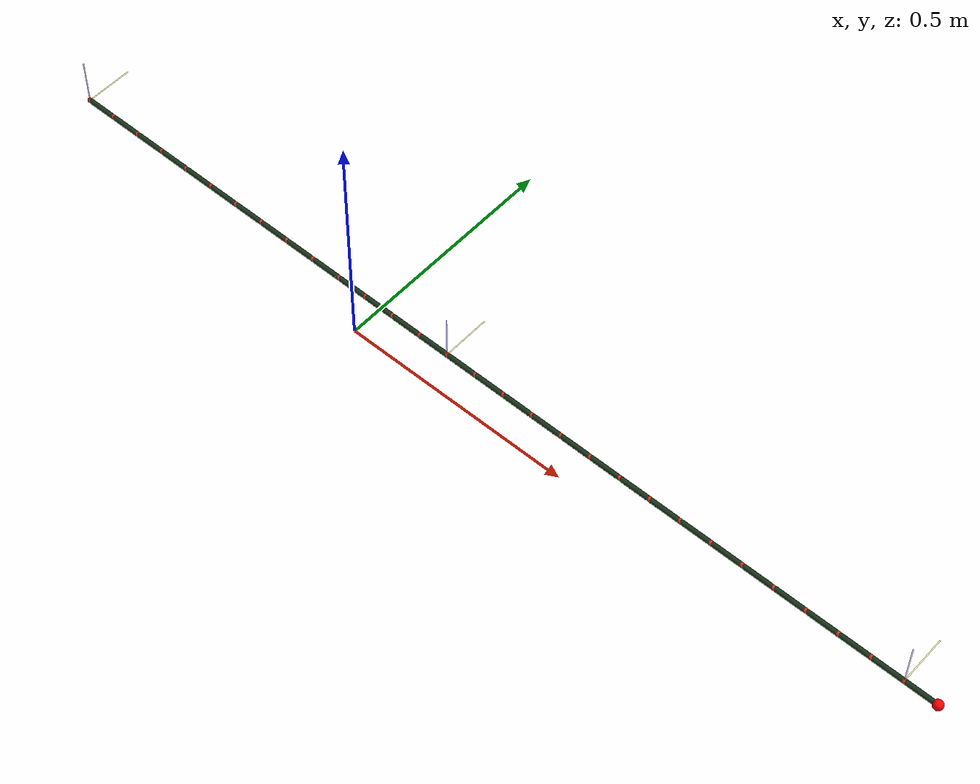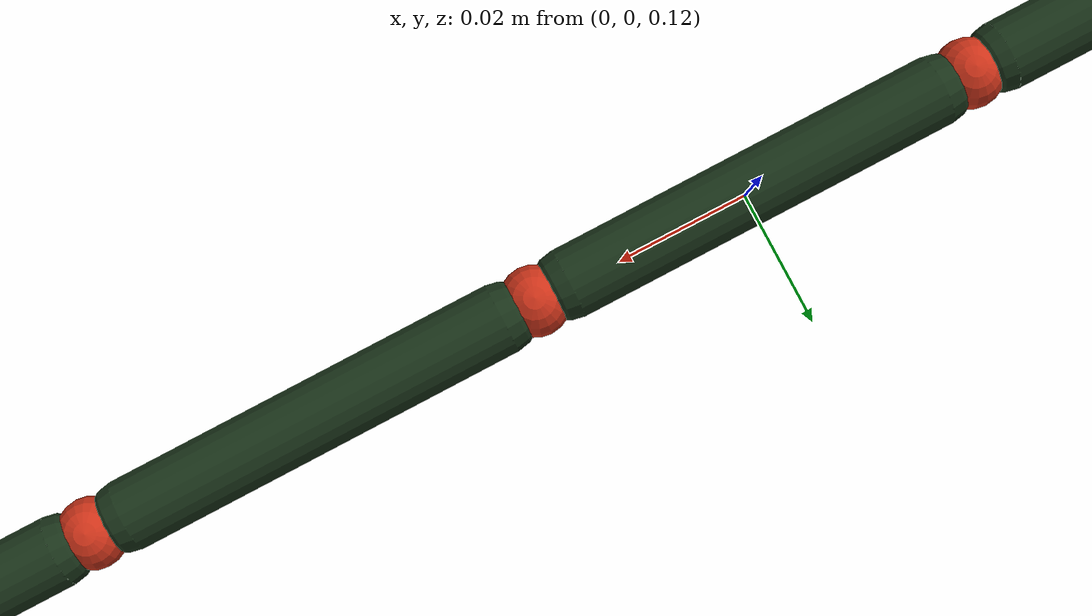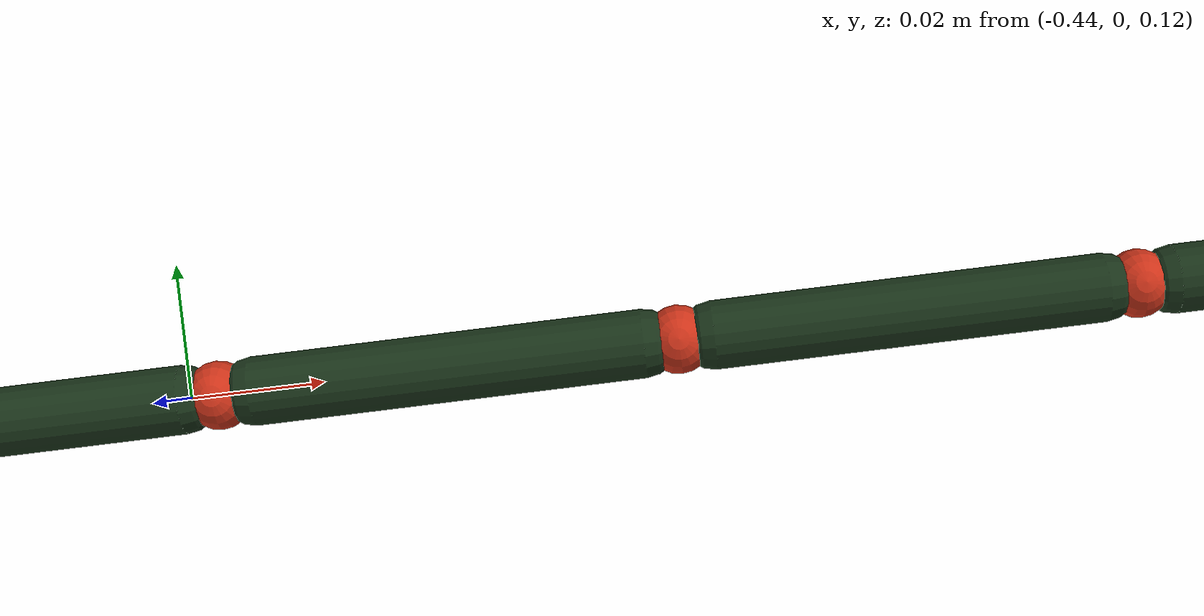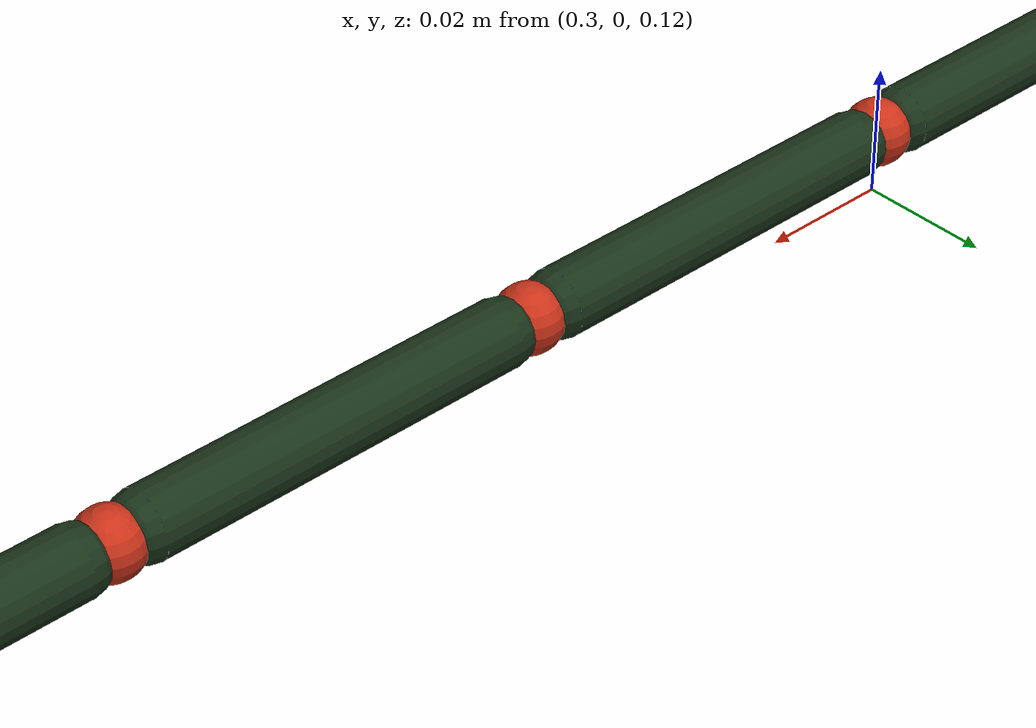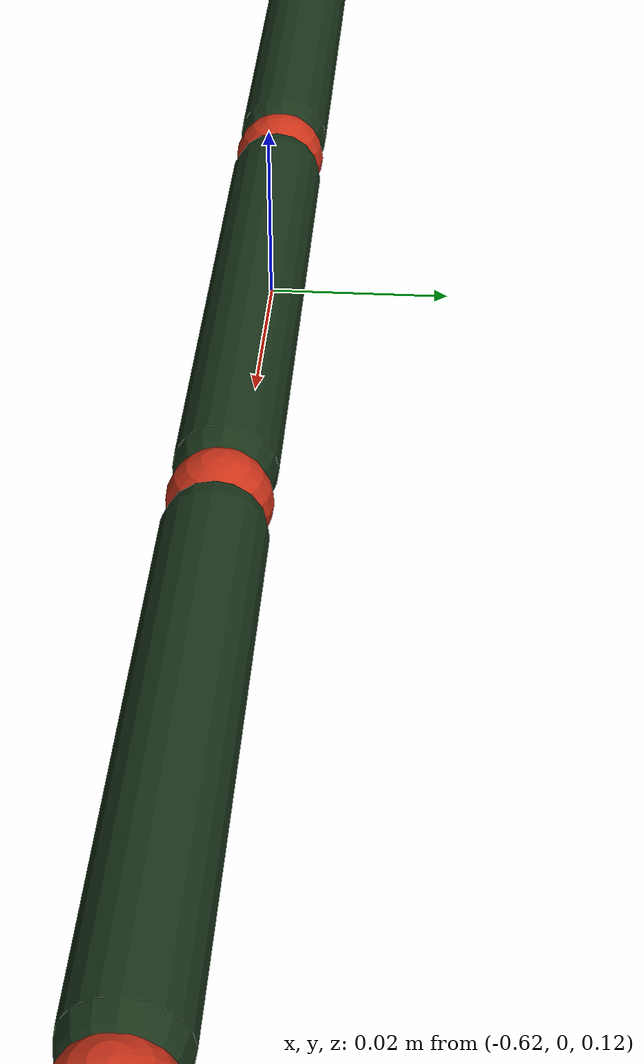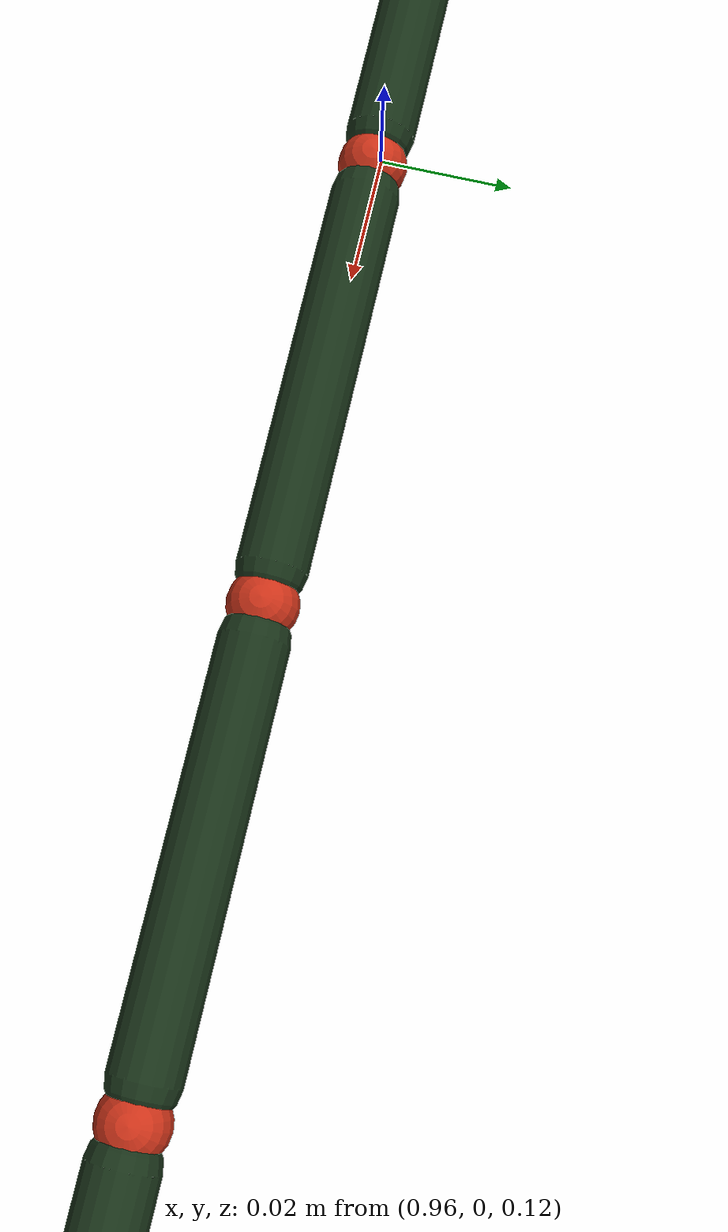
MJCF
<mujoco model="stiff-rope">
  <worldbody>
    <body name="stiffrope" pos="1.3 0.0 0.13" quat="1 0 0 0">
      <site name="ft_rope" pos="0 0 0" size="0.01 0.01 0.01" rgba="1 0 0 1" type="sphere" group="1" />
      <body name="r_joint0_body" pos="0 0 0" quat="1.0 0.0 0.0 0.0">
        <geom name="r_joint0_geom" conaffinity="0" contype="0" type="sphere" size="0.005 0.005 0.005" mass="0.00019333333333333333" rgba=".8 .2 .1 1" friction="1 0.005 0.0001"/>
        <site name="r_joint0_site" type="sphere" size="0.0001 0.0001 0.0001"/>
        <body name="r_joint1_body" pos="-0.06666666666666667 0 0" quat="1 0 0 0">
          <geom name="r_joint1_geom" conaffinity="0" contype="0" type="sphere" size="0.005 0.005 0.005" mass="0.00019333333333333333" rgba=".8 .2 .1 1" friction="1 0.005 0.0001"/>
          <body name="r_link1_body" pos="0.03333333333333333 0 0">
            <geom name="r_link1_geom" quat="0.707 0. 0.707 0." type="capsule" size="0.0050 0.0283" mass="0.00174" rgba=".1 .2 .1 1" friction="1 0.005 0.0001" solref="0.001 1" conaffinity="1" contype="1"/>
            <site name="r_link1_site" type="sphere" size="0.0001 0.0001 0.0001"/>
          </body>
          <site name="r_joint1_site" type="sphere" size="0.0001 0.0001 0.0001"/>
          <site name="twistcylx_1" pos="0 0 0.05" quat="0.707 0 0 -0.707" size="0.001 0.05" rgba="0 0 1 0.3" type="cylinder" group="1" />
          <site name="twistcyly_1" pos="0 0.05 0" quat="0.707 -0.707 0 0" size="0.001 0.05" rgba="1 1 0 0.3" type="cylinder" group="1" />
          <body name="r_joint2_body" pos="-0.06666666666666667 0 0">
            <joint name="r_joint2" type="ball" pos="0.06666666666666667 0 0" stiffness="0.0" damping="0.0"/>
            <geom name="r_joint2_geom" conaffinity="0" contype="0" type="sphere" size="0.005 0.005 0.005" mass="0.00019333333333333333" rgba=".8 .2 .1 1" friction="1 0.005 0.0001"/>
            <body name="r_link2_body" pos="0.03333333333333333 0 0">
              <geom name="r_link2_geom" quat="0.707 0. 0.707 0." type="capsule" size="0.0050 0.0283" mass="0.00174" rgba=".1 .2 .1 1" friction="1 0.005 0.0001" solref="0.001 1"/>
              <site name="r_link2_site" type="sphere" size="0.0001 0.0001 0.0001"/>
            </body>
            <site name="r_joint2_site" type="sphere" size="0.0001 0.0001 0.0001"/>
            <body name="r_joint3_body" pos="-0.06666666666666667 0 0">
              <joint name="r_joint3" type="ball" pos="0.06666666666666667 0 0" stiffness="0.0" damping="0.0"/>
              <geom name="r_joint3_geom" conaffinity="0" contype="0" type="sphere" size="0.005 0.005 0.005" mass="0.00019333333333333333" rgba=".8 .2 .1 1" friction="1 0.005 0.0001"/>
              <body name="r_link3_body" pos="0.03333333333333333 0 0">
                <geom name="r_link3_geom" quat="0.707 0. 0.707 0." type="capsule" size="0.0050 0.0283" mass="0.00174" rgba=".1 .2 .1 1" friction="1 0.005 0.0001" solref="0.001 1"/>
                <site name="r_link3_site" type="sphere" size="0.0001 0.0001 0.0001"/>
              </body>
              <site name="r_joint3_site" type="sphere" size="0.0001 0.0001 0.0001"/>
              <body name="r_joint4_body" pos="-0.06666666666666667 0 0">
                <joint name="r_joint4" type="ball" pos="0.06666666666666667 0 0" stiffness="0.0" damping="0.0"/>
                <geom name="r_joint4_geom" conaffinity="0" contype="0" type="sphere" size="0.005 0.005 0.005" mass="0.00019333333333333333" rgba=".8 .2 .1 1" friction="1 0.005 0.0001"/>
                <body name="r_link4_body" pos="0.03333333333333333 0 0">
                  <geom name="r_link4_geom" quat="0.707 0. 0.707 0." type="capsule" size="0.0050 0.0283" mass="0.00174" rgba=".1 .2 .1 1" friction="1 0.005 0.0001" solref="0.001 1"/>
                  <site name="r_link4_site" type="sphere" size="0.0001 0.0001 0.0001"/>
                </body>
                <site name="r_joint4_site" type="sphere" size="0.0001 0.0001 0.0001"/>
                <body name="r_joint5_body" pos="-0.06666666666666667 0 0">
                  <joint name="r_joint5" type="ball" pos="0.06666666666666667 0 0" stiffness="0.0" damping="0.0"/>
                  <geom name="r_joint5_geom" conaffinity="0" contype="0" type="sphere" size="0.005 0.005 0.005" mass="0.00019333333333333333" rgba=".8 .2 .1 1" friction="1 0.005 0.0001"/>
                  <body name="r_link5_body" pos="0.03333333333333333 0 0">
                    <geom name="r_link5_geom" quat="0.707 0. 0.707 0." type="capsule" size="0.0050 0.0283" mass="0.00174" rgba=".1 .2 .1 1" friction="1 0.005 0.0001" solref="0.001 1"/>
                    <site name="r_link5_site" type="sphere" size="0.0001 0.0001 0.0001"/>
                  </body>
                  <site name="r_joint5_site" type="sphere" size="0.0001 0.0001 0.0001"/>
                  <body name="r_joint6_body" pos="-0.06666666666666667 0 0">
                    <joint name="r_joint6" type="ball" pos="0.06666666666666667 0 0" stiffness="0.0" damping="0.0"/>
                    <geom name="r_joint6_geom" conaffinity="0" contype="0" type="sphere" size="0.005 0.005 0.005" mass="0.00019333333333333333" rgba=".8 .2 .1 1" friction="1 0.005 0.0001"/>
                    <body name="r_link6_body" pos="0.03333333333333333 0 0">
                      <geom name="r_link6_geom" quat="0.707 0. 0.707 0." type="capsule" size="0.0050 0.0283" mass="0.00174" rgba=".1 .2 .1 1" friction="1 0.005 0.0001" solref="0.001 1"/>
                      <site name="r_link6_site" type="sphere" size="0.0001 0.0001 0.0001"/>
                    </body>
                    <site name="r_joint6_site" type="sphere" size="0.0001 0.0001 0.0001"/>
                    <body name="r_joint7_body" pos="-0.06666666666666667 0 0">
                      <joint name="r_joint7" type="ball" pos="0.06666666666666667 0 0" stiffness="0.0" damping="0.0"/>
                      <geom name="r_joint7_geom" conaffinity="0" contype="0" type="sphere" size="0.005 0.005 0.005" mass="0.00019333333333333333" rgba=".8 .2 .1 1" friction="1 0.005 0.0001"/>
                      <body name="r_link7_body" pos="0.03333333333333333 0 0">
                        <geom name="r_link7_geom" quat="0.707 0. 0.707 0." type="capsule" size="0.0050 0.0283" mass="0.00174" rgba=".1 .2 .1 1" friction="1 0.005 0.0001" solref="0.001 1"/>
                        <site name="r_link7_site" type="sphere" size="0.0001 0.0001 0.0001"/>
                      </body>
                      <site name="r_joint7_site" type="sphere" size="0.0001 0.0001 0.0001"/>
                      <body name="r_joint8_body" pos="-0.06666666666666667 0 0">
                        <joint name="r_joint8" type="ball" pos="0.06666666666666667 0 0" stiffness="0.0" damping="0.0"/>
                        <geom name="r_joint8_geom" conaffinity="0" contype="0" type="sphere" size="0.005 0.005 0.005" mass="0.00019333333333333333" rgba=".8 .2 .1 1" friction="1 0.005 0.0001"/>
                        <body name="r_link8_body" pos="0.03333333333333333 0 0">
                          <geom name="r_link8_geom" quat="0.707 0. 0.707 0." type="capsule" size="0.0050 0.0283" mass="0.00174" rgba=".1 .2 .1 1" friction="1 0.005 0.0001" solref="0.001 1"/>
                          <site name="r_link8_site" type="sphere" size="0.0001 0.0001 0.0001"/>
                        </body>
                        <site name="r_joint8_site" type="sphere" size="0.0001 0.0001 0.0001"/>
                        <body name="r_joint9_body" pos="-0.06666666666666667 0 0">
                          <joint name="r_joint9" type="ball" pos="0.06666666666666667 0 0" stiffness="0.0" damping="0.0"/>
                          <geom name="r_joint9_geom" conaffinity="0" contype="0" type="sphere" size="0.005 0.005 0.005" mass="0.00019333333333333333" rgba=".8 .2 .1 1" friction="1 0.005 0.0001"/>
                          <body name="r_link9_body" pos="0.03333333333333333 0 0">
                            <geom name="r_link9_geom" quat="0.707 0. 0.707 0." type="capsule" size="0.0050 0.0283" mass="0.00174" rgba=".1 .2 .1 1" friction="1 0.005 0.0001" solref="0.001 1"/>
                            <site name="r_link9_site" type="sphere" size="0.0001 0.0001 0.0001"/>
                          </body>
                          <site name="r_joint9_site" type="sphere" size="0.0001 0.0001 0.0001"/>
                          <body name="r_joint10_body" pos="-0.06666666666666667 0 0">
                            <joint name="r_joint10" type="ball" pos="0.06666666666666667 0 0" stiffness="0.0" damping="0.0"/>
                            <geom name="r_joint10_geom" conaffinity="0" contype="0" type="sphere" size="0.005 0.005 0.005" mass="0.00019333333333333333" rgba=".8 .2 .1 1" friction="1 0.005 0.0001"/>
                            <body name="r_link10_body" pos="0.03333333333333333 0 0">
                              <geom name="r_link10_geom" quat="0.707 0. 0.707 0." type="capsule" size="0.0050 0.0283" mass="0.00174" rgba=".1 .2 .1 1" friction="1 0.005 0.0001" solref="0.001 1"/>
                              <site name="r_link10_site" type="sphere" size="0.0001 0.0001 0.0001"/>
                            </body>
                            <site name="r_joint10_site" type="sphere" size="0.0001 0.0001 0.0001"/>
                            <body name="r_joint11_body" pos="-0.06666666666666667 0 0">
                              <joint name="r_joint11" type="ball" pos="0.06666666666666667 0 0" stiffness="0.0" damping="0.0"/>
                              <geom name="r_joint11_geom" conaffinity="0" contype="0" type="sphere" size="0.005 0.005 0.005" mass="0.00019333333333333333" rgba=".8 .2 .1 1" friction="1 0.005 0.0001"/>
                              <body name="r_link11_body" pos="0.03333333333333333 0 0">
                                <geom name="r_link11_geom" quat="0.707 0. 0.707 0." type="capsule" size="0.0050 0.0283" mass="0.00174" rgba=".1 .2 .1 1" friction="1 0.005 0.0001" solref="0.001 1"/>
                                <site name="r_link11_site" type="sphere" size="0.0001 0.0001 0.0001"/>
                              </body>
                              <site name="r_joint11_site" type="sphere" size="0.0001 0.0001 0.0001"/>
                              <body name="r_joint12_body" pos="-0.06666666666666667 0 0">
                                <joint name="r_joint12" type="ball" pos="0.06666666666666667 0 0" stiffness="0.0" damping="0.0"/>
                                <geom name="r_joint12_geom" conaffinity="0" contype="0" type="sphere" size="0.005 0.005 0.005" mass="0.00019333333333333333" rgba=".8 .2 .1 1" friction="1 0.005 0.0001"/>
                                <body name="r_link12_body" pos="0.03333333333333333 0 0">
                                  <geom name="r_link12_geom" quat="0.707 0. 0.707 0." type="capsule" size="0.0050 0.0283" mass="0.00174" rgba=".1 .2 .1 1" friction="1 0.005 0.0001" solref="0.001 1"/>
                                  <site name="r_link12_site" type="sphere" size="0.0001 0.0001 0.0001"/>
                                </body>
                                <site name="r_joint12_site" type="sphere" size="0.0001 0.0001 0.0001"/>
                                <body name="r_joint13_body" pos="-0.06666666666666667 0 0">
                                  <joint name="r_joint13" type="ball" pos="0.06666666666666667 0 0" stiffness="0.0" damping="0.0"/>
                                  <geom name="r_joint13_geom" conaffinity="0" contype="0" type="sphere" size="0.005 0.005 0.005" mass="0.00019333333333333333" rgba=".8 .2 .1 1" friction="1 0.005 0.0001"/>
                                  <body name="r_link13_body" pos="0.03333333333333333 0 0">
                                    <geom name="r_link13_geom" quat="0.707 0. 0.707 0." type="capsule" size="0.0050 0.0283" mass="0.00174" rgba=".1 .2 .1 1" friction="1 0.005 0.0001" solref="0.001 1"/>
                                    <site name="r_link13_site" type="sphere" size="0.0001 0.0001 0.0001"/>
                                  </body>
                                  <site name="r_joint13_site" type="sphere" size="0.0001 0.0001 0.0001"/>
                                  <body name="r_joint14_body" pos="-0.06666666666666667 0 0">
                                    <joint name="r_joint14" type="ball" pos="0.06666666666666667 0 0" stiffness="0.0" damping="0.0"/>
                                    <geom name="r_joint14_geom" conaffinity="0" contype="0" type="sphere" size="0.005 0.005 0.005" mass="0.00019333333333333333" rgba=".8 .2 .1 1" friction="1 0.005 0.0001"/>
                                    <body name="r_link14_body" pos="0.03333333333333333 0 0">
                                      <geom name="r_link14_geom" quat="0.707 0. 0.707 0." type="capsule" size="0.0050 0.0283" mass="0.00174" rgba=".1 .2 .1 1" friction="1 0.005 0.0001" solref="0.001 1"/>
                                      <site name="r_link14_site" type="sphere" size="0.0001 0.0001 0.0001"/>
                                    </body>
                                    <site name="r_joint14_site" type="sphere" size="0.0001 0.0001 0.0001"/>
                                    <body name="r_joint15_body" pos="-0.06666666666666667 0 0">
                                      <joint name="r_joint15" type="ball" pos="0.06666666666666667 0 0" stiffness="0.0" damping="0.0"/>
                                      <geom name="r_joint15_geom" conaffinity="0" contype="0" type="sphere" size="0.005 0.005 0.005" mass="0.00019333333333333333" rgba=".8 .2 .1 1" friction="1 0.005 0.0001"/>
                                      <body name="r_link15_body" pos="0.03333333333333333 0 0">
                                        <geom name="r_link15_geom" quat="0.707 0. 0.707 0." type="capsule" size="0.0050 0.0283" mass="0.00174" rgba=".1 .2 .1 1" friction="1 0.005 0.0001" solref="0.001 1"/>
                                        <site name="r_link15_site" type="sphere" size="0.0001 0.0001 0.0001"/>
                                      </body>
                                      <site name="r_joint15_site" type="sphere" size="0.0001 0.0001 0.0001"/>
                                      <body name="r_joint16_body" pos="-0.06666666666666667 0 0">
                                        <joint name="r_joint16" type="ball" pos="0.06666666666666667 0 0" stiffness="0.0" damping="0.0"/>
                                        <geom name="r_joint16_geom" conaffinity="0" contype="0" type="sphere" size="0.005 0.005 0.005" mass="0.00019333333333333333" rgba=".8 .2 .1 1" friction="1 0.005 0.0001"/>
                                        <body name="r_link16_body" pos="0.03333333333333333 0 0">
                                          <geom name="r_link16_geom" quat="0.707 0. 0.707 0." type="capsule" size="0.0050 0.0283" mass="0.00174" rgba=".1 .2 .1 1" friction="1 0.005 0.0001" solref="0.001 1"/>
                                          <site name="r_link16_site" type="sphere" size="0.0001 0.0001 0.0001"/>
                                        </body>
                                        <site name="r_joint16_site" type="sphere" size="0.0001 0.0001 0.0001"/>
                                        <site name="twistcylx_16" pos="0 0 0.05" quat="0.707 0 0 -0.707" size="0.001 0.05" rgba="0 0 1 0.3" type="cylinder" group="1" />
                                        <site name="twistcyly_16" pos="0 0.05 0" quat="0.707 -0.707 0 0" size="0.001 0.05" rgba="1 1 0 0.3" type="cylinder" group="1" />
                                        <body name="r_joint17_body" pos="-0.06666666666666667 0 0">
                                          <joint name="r_joint17" type="ball" pos="0.06666666666666667 0 0" stiffness="0.0" damping="0.0"/>
                                          <geom name="r_joint17_geom" conaffinity="0" contype="0" type="sphere" size="0.005 0.005 0.005" mass="0.00019333333333333333" rgba=".8 .2 .1 1" friction="1 0.005 0.0001"/>
                                          <body name="r_link17_body" pos="0.03333333333333333 0 0">
                                            <geom name="r_link17_geom" quat="0.707 0. 0.707 0." type="capsule" size="0.0050 0.0283" mass="0.00174" rgba=".1 .2 .1 1" friction="1 0.005 0.0001" solref="0.001 1"/>
                                            <site name="r_link17_site" type="sphere" size="0.0001 0.0001 0.0001"/>
                                          </body>
                                          <site name="r_joint17_site" type="sphere" size="0.0001 0.0001 0.0001"/>
                                          <body name="r_joint18_body" pos="-0.06666666666666667 0 0">
                                            <joint name="r_joint18" type="ball" pos="0.06666666666666667 0 0" stiffness="0.0" damping="0.0"/>
                                            <geom name="r_joint18_geom" conaffinity="0" contype="0" type="sphere" size="0.005 0.005 0.005" mass="0.00019333333333333333" rgba=".8 .2 .1 1" friction="1 0.005 0.0001"/>
                                            <body name="r_link18_body" pos="0.03333333333333333 0 0">
                                              <geom name="r_link18_geom" quat="0.707 0. 0.707 0." type="capsule" size="0.0050 0.0283" mass="0.00174" rgba=".1 .2 .1 1" friction="1 0.005 0.0001" solref="0.001 1"/>
                                              <site name="r_link18_site" type="sphere" size="0.0001 0.0001 0.0001"/>
                                            </body>
                                            <site name="r_joint18_site" type="sphere" size="0.0001 0.0001 0.0001"/>
                                            <body name="r_joint19_body" pos="-0.06666666666666667 0 0">
                                              <joint name="r_joint19" type="ball" pos="0.06666666666666667 0 0" stiffness="0.0" damping="0.0"/>
                                              <geom name="r_joint19_geom" conaffinity="0" contype="0" type="sphere" size="0.005 0.005 0.005" mass="0.00019333333333333333" rgba=".8 .2 .1 1" friction="1 0.005 0.0001"/>
                                              <body name="r_link19_body" pos="0.03333333333333333 0 0">
                                                <geom name="r_link19_geom" quat="0.707 0. 0.707 0." type="capsule" size="0.0050 0.0283" mass="0.00174" rgba=".1 .2 .1 1" friction="1 0.005 0.0001" solref="0.001 1"/>
                                                <site name="r_link19_site" type="sphere" size="0.0001 0.0001 0.0001"/>
                                              </body>
                                              <site name="r_joint19_site" type="sphere" size="0.0001 0.0001 0.0001"/>
                                              <body name="r_joint20_body" pos="-0.06666666666666667 0 0">
                                                <joint name="r_joint20" type="ball" pos="0.06666666666666667 0 0" stiffness="0.0" damping="0.0"/>
                                                <geom name="r_joint20_geom" conaffinity="0" contype="0" type="sphere" size="0.005 0.005 0.005" mass="0.00019333333333333333" rgba=".8 .2 .1 1" friction="1 0.005 0.0001"/>
                                                <body name="r_link20_body" pos="0.03333333333333333 0 0">
                                                  <geom name="r_link20_geom" quat="0.707 0. 0.707 0." type="capsule" size="0.0050 0.0283" mass="0.00174" rgba=".1 .2 .1 1" friction="1 0.005 0.0001" solref="0.001 1"/>
                                                  <site name="r_link20_site" type="sphere" size="0.0001 0.0001 0.0001"/>
                                                </body>
                                                <site name="r_joint20_site" type="sphere" size="0.0001 0.0001 0.0001"/>
                                                <body name="r_joint21_body" pos="-0.06666666666666667 0 0">
                                                  <joint name="r_joint21" type="ball" pos="0.06666666666666667 0 0" stiffness="0.0" damping="0.0"/>
                                                  <geom name="r_joint21_geom" conaffinity="0" contype="0" type="sphere" size="0.005 0.005 0.005" mass="0.00019333333333333333" rgba=".8 .2 .1 1" friction="1 0.005 0.0001"/>
                                                  <body name="r_link21_body" pos="0.03333333333333333 0 0">
                                                    <geom name="r_link21_geom" quat="0.707 0. 0.707 0." type="capsule" size="0.0050 0.0283" mass="0.00174" rgba=".1 .2 .1 1" friction="1 0.005 0.0001" solref="0.001 1"/>
                                                    <site name="r_link21_site" type="sphere" size="0.0001 0.0001 0.0001"/>
                                                  </body>
                                                  <site name="r_joint21_site" type="sphere" size="0.0001 0.0001 0.0001"/>
                                                  <body name="r_joint22_body" pos="-0.06666666666666667 0 0">
                                                    <joint name="r_joint22" type="ball" pos="0.06666666666666667 0 0" stiffness="0.0" damping="0.0"/>
                                                    <geom name="r_joint22_geom" conaffinity="0" contype="0" type="sphere" size="0.005 0.005 0.005" mass="0.00019333333333333333" rgba=".8 .2 .1 1" friction="1 0.005 0.0001"/>
                                                    <body name="r_link22_body" pos="0.03333333333333333 0 0">
                                                      <geom name="r_link22_geom" quat="0.707 0. 0.707 0." type="capsule" size="0.0050 0.0283" mass="0.00174" rgba=".1 .2 .1 1" friction="1 0.005 0.0001" solref="0.001 1"/>
                                                      <site name="r_link22_site" type="sphere" size="0.0001 0.0001 0.0001"/>
                                                    </body>
                                                    <site name="r_joint22_site" type="sphere" size="0.0001 0.0001 0.0001"/>
                                                    <body name="r_joint23_body" pos="-0.06666666666666667 0 0">
                                                      <joint name="r_joint23" type="ball" pos="0.06666666666666667 0 0" stiffness="0.0" damping="0.0"/>
                                                      <geom name="r_joint23_geom" conaffinity="0" contype="0" type="sphere" size="0.005 0.005 0.005" mass="0.00019333333333333333" rgba=".8 .2 .1 1" friction="1 0.005 0.0001"/>
                                                      <body name="r_link23_body" pos="0.03333333333333333 0 0">
                                                        <geom name="r_link23_geom" quat="0.707 0. 0.707 0." type="capsule" size="0.0050 0.0283" mass="0.00174" rgba=".1 .2 .1 1" friction="1 0.005 0.0001" solref="0.001 1"/>
                                                        <site name="r_link23_site" type="sphere" size="0.0001 0.0001 0.0001"/>
                                                      </body>
                                                      <site name="r_joint23_site" type="sphere" size="0.0001 0.0001 0.0001"/>
                                                      <body name="r_joint24_body" pos="-0.06666666666666667 0 0">
                                                        <joint name="r_joint24" type="ball" pos="0.06666666666666667 0 0" stiffness="0.0" damping="0.0"/>
                                                        <geom name="r_joint24_geom" conaffinity="0" contype="0" type="sphere" size="0.005 0.005 0.005" mass="0.00019333333333333333" rgba=".8 .2 .1 1" friction="1 0.005 0.0001"/>
                                                        <body name="r_link24_body" pos="0.03333333333333333 0 0">
                                                          <geom name="r_link24_geom" quat="0.707 0. 0.707 0." type="capsule" size="0.0050 0.0283" mass="0.00174" rgba=".1 .2 .1 1" friction="1 0.005 0.0001" solref="0.001 1"/>
                                                          <site name="r_link24_site" type="sphere" size="0.0001 0.0001 0.0001"/>
                                                        </body>
                                                        <site name="r_joint24_site" type="sphere" size="0.0001 0.0001 0.0001"/>
                                                        <body name="r_joint25_body" pos="-0.06666666666666667 0 0">
                                                          <joint name="r_joint25" type="ball" pos="0.06666666666666667 0 0" stiffness="0.0" damping="0.0"/>
                                                          <geom name="r_joint25_geom" conaffinity="0" contype="0" type="sphere" size="0.005 0.005 0.005" mass="0.00019333333333333333" rgba=".8 .2 .1 1" friction="1 0.005 0.0001"/>
                                                          <body name="r_link25_body" pos="0.03333333333333333 0 0">
                                                            <geom name="r_link25_geom" quat="0.707 0. 0.707 0." type="capsule" size="0.0050 0.0283" mass="0.00174" rgba=".1 .2 .1 1" friction="1 0.005 0.0001" solref="0.001 1"/>
                                                            <site name="r_link25_site" type="sphere" size="0.0001 0.0001 0.0001"/>
                                                          </body>
                                                          <site name="r_joint25_site" type="sphere" size="0.0001 0.0001 0.0001"/>
                                                          <body name="r_joint26_body" pos="-0.06666666666666667 0 0">
                                                            <joint name="r_joint26" type="ball" pos="0.06666666666666667 0 0" stiffness="0.0" damping="0.0"/>
                                                            <geom name="r_joint26_geom" conaffinity="0" contype="0" type="sphere" size="0.005 0.005 0.005" mass="0.00019333333333333333" rgba=".8 .2 .1 1" friction="1 0.005 0.0001"/>
                                                            <body name="r_link26_body" pos="0.03333333333333333 0 0">
                                                              <geom name="r_link26_geom" quat="0.707 0. 0.707 0." type="capsule" size="0.0050 0.0283" mass="0.00174" rgba=".1 .2 .1 1" friction="1 0.005 0.0001" solref="0.001 1"/>
                                                              <site name="r_link26_site" type="sphere" size="0.0001 0.0001 0.0001"/>
                                                            </body>
                                                            <site name="r_joint26_site" type="sphere" size="0.0001 0.0001 0.0001"/>
                                                            <body name="r_joint27_body" pos="-0.06666666666666667 0 0">
                                                              <joint name="r_joint27" type="ball" pos="0.06666666666666667 0 0" stiffness="0.0" damping="0.0"/>
                                                              <geom name="r_joint27_geom" conaffinity="0" contype="0" type="sphere" size="0.005 0.005 0.005" mass="0.00019333333333333333" rgba=".8 .2 .1 1" friction="1 0.005 0.0001"/>
                                                              <body name="r_link27_body" pos="0.03333333333333333 0 0">
                                                                <geom name="r_link27_geom" quat="0.707 0. 0.707 0." type="capsule" size="0.0050 0.0283" mass="0.00174" rgba=".1 .2 .1 1" friction="1 0.005 0.0001" solref="0.001 1"/>
                                                                <site name="r_link27_site" type="sphere" size="0.0001 0.0001 0.0001"/>
                                                              </body>
                                                              <site name="r_joint27_site" type="sphere" size="0.0001 0.0001 0.0001"/>
                                                              <body name="r_joint28_body" pos="-0.06666666666666667 0 0">
                                                                <joint name="r_joint28" type="ball" pos="0.06666666666666667 0 0" stiffness="0.0" damping="0.0"/>
                                                                <geom name="r_joint28_geom" conaffinity="0" contype="0" type="sphere" size="0.005 0.005 0.005" mass="0.00019333333333333333" rgba=".8 .2 .1 1" friction="1 0.005 0.0001"/>
                                                                <body name="r_link28_body" pos="0.03333333333333333 0 0">
                                                                  <geom name="r_link28_geom" quat="0.707 0. 0.707 0." type="capsule" size="0.0050 0.0283" mass="0.00174" rgba=".1 .2 .1 1" friction="1 0.005 0.0001" solref="0.001 1"/>
                                                                  <site name="r_link28_site" type="sphere" size="0.0001 0.0001 0.0001"/>
                                                                </body>
                                                                <site name="r_joint28_site" type="sphere" size="0.0001 0.0001 0.0001"/>
                                                                <body name="r_joint29_body" pos="-0.06666666666666667 0 0">
                                                                  <joint name="r_joint29" type="ball" pos="0.06666666666666667 0 0" stiffness="0.0" damping="0.0"/>
                                                                  <geom name="r_joint29_geom" conaffinity="0" contype="0" type="sphere" size="0.005 0.005 0.005" mass="0.00019333333333333333" rgba=".8 .2 .1 1" friction="1 0.005 0.0001"/>
                                                                  <body name="r_link29_body" pos="0.03333333333333333 0 0">
                                                                    <geom name="r_link29_geom" quat="0.707 0. 0.707 0." type="capsule" size="0.0050 0.0283" mass="0.00174" rgba=".1 .2 .1 1" friction="1 0.005 0.0001" solref="0.001 1"/>
                                                                    <site name="r_link29_site" type="sphere" size="0.0001 0.0001 0.0001"/>
                                                                  </body>
                                                                  <site name="r_joint29_site" type="sphere" size="0.0001 0.0001 0.0001"/>
                                                                  <body name="r_joint30_body" pos="-0.06666666666666667 0 0">
                                                                    <joint name="r_joint30" type="ball" pos="0.06666666666666667 0 0" stiffness="0.0" damping="0.0"/>
                                                                    <geom name="r_joint30_geom" conaffinity="0" contype="0" type="sphere" size="0.005 0.005 0.005" mass="0.00019333333333333333" rgba=".8 .2 .1 1" friction="1 0.005 0.0001"/>
                                                                    <body name="r_link30_body" pos="0.03333333333333333 0 0">
                                                                      <geom name="r_link30_geom" quat="0.707 0. 0.707 0." type="capsule" size="0.0050 0.0283" mass="0.00174" rgba=".1 .2 .1 1" friction="1 0.005 0.0001" solref="0.001 1" conaffinity="1" contype="1"/>
                                                                      <site name="r_link30_site" type="sphere" size="0.0001 0.0001 0.0001"/>
                                                                    </body>
                                                                    <site name="r_joint30_site" type="sphere" size="0.0001 0.0001 0.0001"/>
                                                                    <site name="twistcylx_30" pos="0 0 0.05" quat="0.707 0 0 -0.707" size="0.001 0.05" rgba="0 0 1 0.3" type="cylinder" group="1" />
                                                                    <site name="twistcyly_30" pos="0 0.05 0" quat="0.707 -0.707 0 0" size="0.001 0.05" rgba="1 1 0 0.3" type="cylinder" group="1" />
                                                                  </body>
                                                                </body>
                                                              </body>
                                                            </body>
                                                          </body>
                                                        </body>
                                                      </body>
                                                    </body>
                                                  </body>
                                                </body>
                                              </body>
                                            </body>
                                          </body>
                                        </body>
                                      </body>
                                    </body>
                                  </body>
                                </body>
                              </body>
                            </body>
                          </body>
                        </body>
                      </body>
                    </body>
                  </body>
                </body>
              </body>
            </body>
          </body>
        </body>
      </body>
    </body>
  </worldbody>
  <sensor>
  </sensor>
</mujoco>
